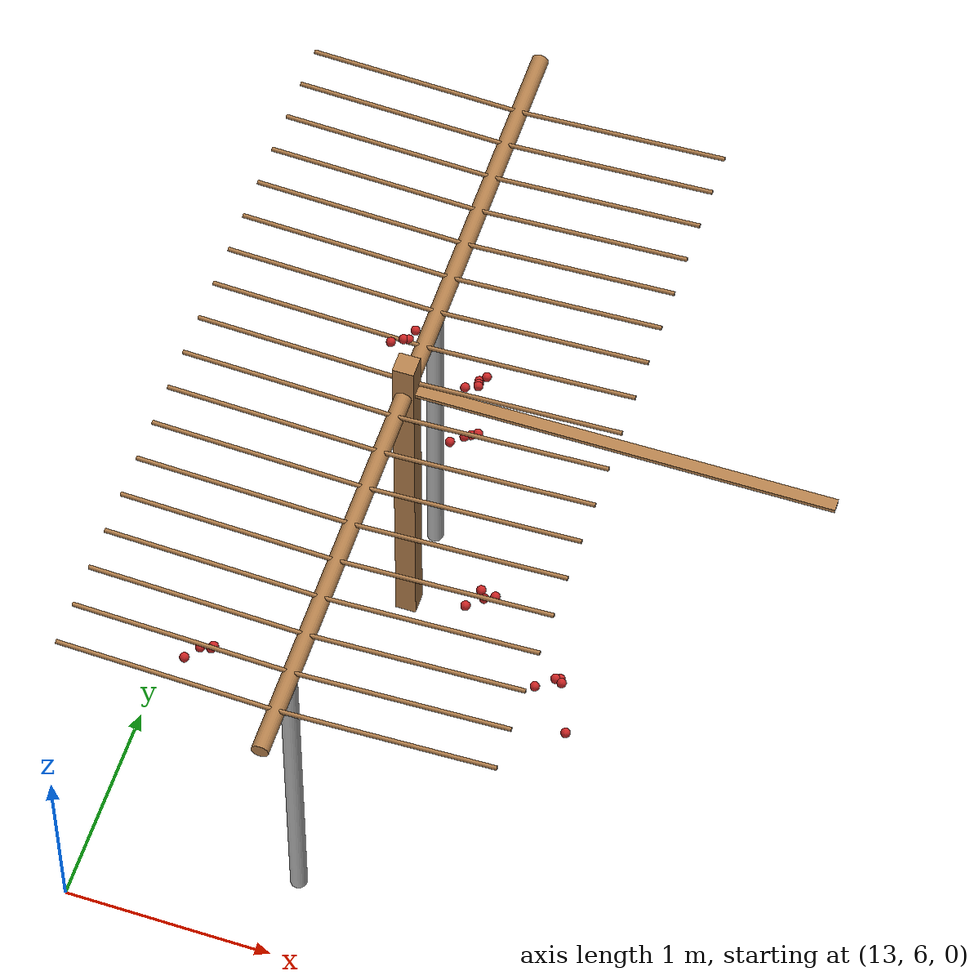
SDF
<sdf version="1.4">
 <model name="pergola">
  <include><name>post_81</name><pose>14.0 8.0 0 0 0 0</pose><uri>model://post</uri></include>
  <link name="beam_81">
   <pose>15.0 8.0 1.81 0 0 0</pose>
   <collision name="collision"><geometry><box><size>2.0 0.06 0.02</size></box></geometry></collision>
   <visual name="visual">
    <geometry><box><size>2.0 0.06 0.02</size></box></geometry>
    <material><script><name>Gazebo/Wood</name></script></material>
   </visual>
   <inertial>
    <mass>5</mass>
    <inertia>
     <ixx>0.0016666666666666668</ixx>
     <ixy>0.0</ixy>
     <ixz>0.0</ixz>
     <iyy>1.6681666666666664</iyy>
     <iyz>0.0</iyz>
     <izz>1.6668333333333332</izz>
    </inertia>
   </inertial>
  </link>
  <include><name>tree_73</name><pose>14.0 6.4 0 0 0 0</pose><uri>model://tree_trunk</uri></include>
  <include><name>tree_74</name><pose>14.0 8.4 0 0 0 0</pose><uri>model://tree_trunk</uri></include>
  <link name="baseBranch_73">
   <pose>14.0 7.0 1.8 1.5707963267948966 0 0</pose>
   <collision name="collision">
    <geometry><cylinder><radius>0.04</radius><length>1.94</length></cylinder></geometry>
   </collision>
   <visual name="visual">
    <geometry><cylinder><radius>0.04</radius><length>1.94</length></cylinder></geometry>
    <material><script><name>Gazebo/WoodFloor</name></script></material>
   </visual>
   <inertial>
    <mass>10</mass>
    <inertia>
     <ixx>3.140333333333333</ixx>
     <ixy>0.0</ixy>
     <ixz>0.0</ixz>
     <iyy>3.140333333333333</iyy>
     <iyz>0.0</iyz>
     <izz>0.008</izz>
    </inertia>
   </inertial>
  </link>
  <link name="baseBranch_74">
   <pose>14.0 9.0 1.8 1.5707963267948966 0 0</pose>
   <collision name="collision">
    <geometry><cylinder><radius>0.04</radius><length>1.94</length></cylinder></geometry>
   </collision>
   <visual name="visual">
    <geometry><cylinder><radius>0.04</radius><length>1.94</length></cylinder></geometry>
    <material><script><name>Gazebo/WoodFloor</name></script></material>
   </visual>
   <inertial>
    <mass>10</mass>
    <inertia>
     <ixx>3.140333333333333</ixx>
     <ixy>0.0</ixy>
     <ixz>0.0</ixz>
     <iyy>3.140333333333333</iyy>
     <iyz>0.0</iyz>
     <izz>0.008</izz>
    </inertia>
   </inertial>
  </link>
  <link name="vine_1263">
   <pose>13.5 6.23 1.85 0 -1.5208379310729538 0</pose>
   <collision name="collision">
    <geometry><cylinder><radius>0.01</radius><length>1.0012492197250393</length></cylinder></geometry>
   </collision>
   <visual name="visual">
    <geometry><cylinder><radius>0.01</radius><length>1.0012492197250393</length></cylinder></geometry>
    <material><script><name>Gazebo/WoodFloor</name></script></material>
   </visual>
   <inertial>
    <mass>5</mass>
    <inertia>
     <ixx>0.41783333333333345</ixx>
     <ixy>0.0</ixy>
     <ixz>0.0</ixz>
     <iyy>0.41783333333333345</iyy>
     <iyz>0.0</iyz>
     <izz>0.00025</izz>
    </inertia>
   </inertial>
  </link>
  <link name="vine_1265">
   <pose>13.5 6.430000000000001 1.85 0 -1.5208379310729538 0</pose>
   <collision name="collision">
    <geometry><cylinder><radius>0.01</radius><length>1.0012492197250393</length></cylinder></geometry>
   </collision>
   <visual name="visual">
    <geometry><cylinder><radius>0.01</radius><length>1.0012492197250393</length></cylinder></geometry>
    <material><script><name>Gazebo/WoodFloor</name></script></material>
   </visual>
   <inertial>
    <mass>5</mass>
    <inertia>
     <ixx>0.41783333333333345</ixx>
     <ixy>0.0</ixy>
     <ixz>0.0</ixz>
     <iyy>0.41783333333333345</iyy>
     <iyz>0.0</iyz>
     <izz>0.00025</izz>
    </inertia>
   </inertial>
  </link>
  <link name="vine_1267">
   <pose>13.5 6.630000000000001 1.85 0 -1.5208379310729538 0</pose>
   <collision name="collision">
    <geometry><cylinder><radius>0.01</radius><length>1.0012492197250393</length></cylinder></geometry>
   </collision>
   <visual name="visual">
    <geometry><cylinder><radius>0.01</radius><length>1.0012492197250393</length></cylinder></geometry>
    <material><script><name>Gazebo/WoodFloor</name></script></material>
   </visual>
   <inertial>
    <mass>5</mass>
    <inertia>
     <ixx>0.41783333333333345</ixx>
     <ixy>0.0</ixy>
     <ixz>0.0</ixz>
     <iyy>0.41783333333333345</iyy>
     <iyz>0.0</iyz>
     <izz>0.00025</izz>
    </inertia>
   </inertial>
  </link>
  <link name="vine_1269">
   <pose>13.5 6.830000000000001 1.85 0 -1.5208379310729538 0</pose>
   <collision name="collision">
    <geometry><cylinder><radius>0.01</radius><length>1.0012492197250393</length></cylinder></geometry>
   </collision>
   <visual name="visual">
    <geometry><cylinder><radius>0.01</radius><length>1.0012492197250393</length></cylinder></geometry>
    <material><script><name>Gazebo/WoodFloor</name></script></material>
   </visual>
   <inertial>
    <mass>5</mass>
    <inertia>
     <ixx>0.41783333333333345</ixx>
     <ixy>0.0</ixy>
     <ixz>0.0</ixz>
     <iyy>0.41783333333333345</iyy>
     <iyz>0.0</iyz>
     <izz>0.00025</izz>
    </inertia>
   </inertial>
  </link>
  <link name="vine_1271">
   <pose>13.5 7.03 1.85 0 -1.5208379310729538 0</pose>
   <collision name="collision">
    <geometry><cylinder><radius>0.01</radius><length>1.0012492197250393</length></cylinder></geometry>
   </collision>
   <visual name="visual">
    <geometry><cylinder><radius>0.01</radius><length>1.0012492197250393</length></cylinder></geometry>
    <material><script><name>Gazebo/WoodFloor</name></script></material>
   </visual>
   <inertial>
    <mass>5</mass>
    <inertia>
     <ixx>0.41783333333333345</ixx>
     <ixy>0.0</ixy>
     <ixz>0.0</ixz>
     <iyy>0.41783333333333345</iyy>
     <iyz>0.0</iyz>
     <izz>0.00025</izz>
    </inertia>
   </inertial>
  </link>
  <link name="vine_1273">
   <pose>13.5 7.23 1.85 0 -1.5208379310729538 0</pose>
   <collision name="collision">
    <geometry><cylinder><radius>0.01</radius><length>1.0012492197250393</length></cylinder></geometry>
   </collision>
   <visual name="visual">
    <geometry><cylinder><radius>0.01</radius><length>1.0012492197250393</length></cylinder></geometry>
    <material><script><name>Gazebo/WoodFloor</name></script></material>
   </visual>
   <inertial>
    <mass>5</mass>
    <inertia>
     <ixx>0.41783333333333345</ixx>
     <ixy>0.0</ixy>
     <ixz>0.0</ixz>
     <iyy>0.41783333333333345</iyy>
     <iyz>0.0</iyz>
     <izz>0.00025</izz>
    </inertia>
   </inertial>
  </link>
  <link name="vine_1275">
   <pose>13.5 7.430000000000001 1.85 0 -1.5208379310729538 0</pose>
   <collision name="collision">
    <geometry><cylinder><radius>0.01</radius><length>1.0012492197250393</length></cylinder></geometry>
   </collision>
   <visual name="visual">
    <geometry><cylinder><radius>0.01</radius><length>1.0012492197250393</length></cylinder></geometry>
    <material><script><name>Gazebo/WoodFloor</name></script></material>
   </visual>
   <inertial>
    <mass>5</mass>
    <inertia>
     <ixx>0.41783333333333345</ixx>
     <ixy>0.0</ixy>
     <ixz>0.0</ixz>
     <iyy>0.41783333333333345</iyy>
     <iyz>0.0</iyz>
     <izz>0.00025</izz>
    </inertia>
   </inertial>
  </link>
  <link name="vine_1277">
   <pose>13.5 7.630000000000001 1.85 0 -1.5208379310729538 0</pose>
   <collision name="collision">
    <geometry><cylinder><radius>0.01</radius><length>1.0012492197250393</length></cylinder></geometry>
   </collision>
   <visual name="visual">
    <geometry><cylinder><radius>0.01</radius><length>1.0012492197250393</length></cylinder></geometry>
    <material><script><name>Gazebo/WoodFloor</name></script></material>
   </visual>
   <inertial>
    <mass>5</mass>
    <inertia>
     <ixx>0.41783333333333345</ixx>
     <ixy>0.0</ixy>
     <ixz>0.0</ixz>
     <iyy>0.41783333333333345</iyy>
     <iyz>0.0</iyz>
     <izz>0.00025</izz>
    </inertia>
   </inertial>
  </link>
  <link name="vine_1279">
   <pose>13.5 7.830000000000001 1.85 0 -1.5208379310729538 0</pose>
   <collision name="collision">
    <geometry><cylinder><radius>0.01</radius><length>1.0012492197250393</length></cylinder></geometry>
   </collision>
   <visual name="visual">
    <geometry><cylinder><radius>0.01</radius><length>1.0012492197250393</length></cylinder></geometry>
    <material><script><name>Gazebo/WoodFloor</name></script></material>
   </visual>
   <inertial>
    <mass>5</mass>
    <inertia>
     <ixx>0.41783333333333345</ixx>
     <ixy>0.0</ixy>
     <ixz>0.0</ixz>
     <iyy>0.41783333333333345</iyy>
     <iyz>0.0</iyz>
     <izz>0.00025</izz>
    </inertia>
   </inertial>
  </link>
  <link name="vine_1281">
   <pose>13.5 8.03 1.85 0 -1.5208379310729538 0</pose>
   <collision name="collision">
    <geometry><cylinder><radius>0.01</radius><length>1.0012492197250393</length></cylinder></geometry>
   </collision>
   <visual name="visual">
    <geometry><cylinder><radius>0.01</radius><length>1.0012492197250393</length></cylinder></geometry>
    <material><script><name>Gazebo/WoodFloor</name></script></material>
   </visual>
   <inertial>
    <mass>5</mass>
    <inertia>
     <ixx>0.41783333333333345</ixx>
     <ixy>0.0</ixy>
     <ixz>0.0</ixz>
     <iyy>0.41783333333333345</iyy>
     <iyz>0.0</iyz>
     <izz>0.00025</izz>
    </inertia>
   </inertial>
  </link>
  <link name="vine_1283">
   <pose>13.5 8.23 1.85 0 -1.5208379310729538 0</pose>
   <collision name="collision">
    <geometry><cylinder><radius>0.01</radius><length>1.0012492197250393</length></cylinder></geometry>
   </collision>
   <visual name="visual">
    <geometry><cylinder><radius>0.01</radius><length>1.0012492197250393</length></cylinder></geometry>
    <material><script><name>Gazebo/WoodFloor</name></script></material>
   </visual>
   <inertial>
    <mass>5</mass>
    <inertia>
     <ixx>0.41783333333333345</ixx>
     <ixy>0.0</ixy>
     <ixz>0.0</ixz>
     <iyy>0.41783333333333345</iyy>
     <iyz>0.0</iyz>
     <izz>0.00025</izz>
    </inertia>
   </inertial>
  </link>
  <link name="vine_1285">
   <pose>13.5 8.43 1.85 0 -1.5208379310729538 0</pose>
   <collision name="collision">
    <geometry><cylinder><radius>0.01</radius><length>1.0012492197250393</length></cylinder></geometry>
   </collision>
   <visual name="visual">
    <geometry><cylinder><radius>0.01</radius><length>1.0012492197250393</length></cylinder></geometry>
    <material><script><name>Gazebo/WoodFloor</name></script></material>
   </visual>
   <inertial>
    <mass>5</mass>
    <inertia>
     <ixx>0.41783333333333345</ixx>
     <ixy>0.0</ixy>
     <ixz>0.0</ixz>
     <iyy>0.41783333333333345</iyy>
     <iyz>0.0</iyz>
     <izz>0.00025</izz>
    </inertia>
   </inertial>
  </link>
  <link name="vine_1287">
   <pose>13.5 8.629999999999999 1.85 0 -1.5208379310729538 0</pose>
   <collision name="collision">
    <geometry><cylinder><radius>0.01</radius><length>1.0012492197250393</length></cylinder></geometry>
   </collision>
   <visual name="visual">
    <geometry><cylinder><radius>0.01</radius><length>1.0012492197250393</length></cylinder></geometry>
    <material><script><name>Gazebo/WoodFloor</name></script></material>
   </visual>
   <inertial>
    <mass>5</mass>
    <inertia>
     <ixx>0.41783333333333345</ixx>
     <ixy>0.0</ixy>
     <ixz>0.0</ixz>
     <iyy>0.41783333333333345</iyy>
     <iyz>0.0</iyz>
     <izz>0.00025</izz>
    </inertia>
   </inertial>
  </link>
  <link name="vine_1289">
   <pose>13.5 8.83 1.85 0 -1.5208379310729538 0</pose>
   <collision name="collision">
    <geometry><cylinder><radius>0.01</radius><length>1.0012492197250393</length></cylinder></geometry>
   </collision>
   <visual name="visual">
    <geometry><cylinder><radius>0.01</radius><length>1.0012492197250393</length></cylinder></geometry>
    <material><script><name>Gazebo/WoodFloor</name></script></material>
   </visual>
   <inertial>
    <mass>5</mass>
    <inertia>
     <ixx>0.41783333333333345</ixx>
     <ixy>0.0</ixy>
     <ixz>0.0</ixz>
     <iyy>0.41783333333333345</iyy>
     <iyz>0.0</iyz>
     <izz>0.00025</izz>
    </inertia>
   </inertial>
  </link>
  <link name="vine_1291">
   <pose>13.5 9.03 1.85 0 -1.5208379310729538 0</pose>
   <collision name="collision">
    <geometry><cylinder><radius>0.01</radius><length>1.0012492197250393</length></cylinder></geometry>
   </collision>
   <visual name="visual">
    <geometry><cylinder><radius>0.01</radius><length>1.0012492197250393</length></cylinder></geometry>
    <material><script><name>Gazebo/WoodFloor</name></script></material>
   </visual>
   <inertial>
    <mass>5</mass>
    <inertia>
     <ixx>0.41783333333333345</ixx>
     <ixy>0.0</ixy>
     <ixz>0.0</ixz>
     <iyy>0.41783333333333345</iyy>
     <iyz>0.0</iyz>
     <izz>0.00025</izz>
    </inertia>
   </inertial>
  </link>
  <link name="vine_1293">
   <pose>13.5 9.23 1.85 0 -1.5208379310729538 0</pose>
   <collision name="collision">
    <geometry><cylinder><radius>0.01</radius><length>1.0012492197250393</length></cylinder></geometry>
   </collision>
   <visual name="visual">
    <geometry><cylinder><radius>0.01</radius><length>1.0012492197250393</length></cylinder></geometry>
    <material><script><name>Gazebo/WoodFloor</name></script></material>
   </visual>
   <inertial>
    <mass>5</mass>
    <inertia>
     <ixx>0.41783333333333345</ixx>
     <ixy>0.0</ixy>
     <ixz>0.0</ixz>
     <iyy>0.41783333333333345</iyy>
     <iyz>0.0</iyz>
     <izz>0.00025</izz>
    </inertia>
   </inertial>
  </link>
  <link name="vine_1295">
   <pose>13.5 9.43 1.85 0 -1.5208379310729538 0</pose>
   <collision name="collision">
    <geometry><cylinder><radius>0.01</radius><length>1.0012492197250393</length></cylinder></geometry>
   </collision>
   <visual name="visual">
    <geometry><cylinder><radius>0.01</radius><length>1.0012492197250393</length></cylinder></geometry>
    <material><script><name>Gazebo/WoodFloor</name></script></material>
   </visual>
   <inertial>
    <mass>5</mass>
    <inertia>
     <ixx>0.41783333333333345</ixx>
     <ixy>0.0</ixy>
     <ixz>0.0</ixz>
     <iyy>0.41783333333333345</iyy>
     <iyz>0.0</iyz>
     <izz>0.00025</izz>
    </inertia>
   </inertial>
  </link>
  <link name="vine_1297">
   <pose>13.5 9.63 1.85 0 -1.5208379310729538 0</pose>
   <collision name="collision">
    <geometry><cylinder><radius>0.01</radius><length>1.0012492197250393</length></cylinder></geometry>
   </collision>
   <visual name="visual">
    <geometry><cylinder><radius>0.01</radius><length>1.0012492197250393</length></cylinder></geometry>
    <material><script><name>Gazebo/WoodFloor</name></script></material>
   </visual>
   <inertial>
    <mass>5</mass>
    <inertia>
     <ixx>0.41783333333333345</ixx>
     <ixy>0.0</ixy>
     <ixz>0.0</ixz>
     <iyy>0.41783333333333345</iyy>
     <iyz>0.0</iyz>
     <izz>0.00025</izz>
    </inertia>
   </inertial>
  </link>
  <link name="vine_1462">
   <pose>14.5 6.23 1.85 0 1.5208379310729538 0</pose>
   <collision name="collision">
    <geometry><cylinder><radius>0.01</radius><length>1.0012492197250393</length></cylinder></geometry>
   </collision>
   <visual name="visual">
    <geometry><cylinder><radius>0.01</radius><length>1.0012492197250393</length></cylinder></geometry>
    <material><script><name>Gazebo/WoodFloor</name></script></material>
   </visual>
   <inertial>
    <mass>5</mass>
    <inertia>
     <ixx>0.41783333333333345</ixx>
     <ixy>0.0</ixy>
     <ixz>0.0</ixz>
     <iyy>0.41783333333333345</iyy>
     <iyz>0.0</iyz>
     <izz>0.00025</izz>
    </inertia>
   </inertial>
  </link>
  <link name="vine_1464">
   <pose>14.5 6.430000000000001 1.85 0 1.5208379310729538 0</pose>
   <collision name="collision">
    <geometry><cylinder><radius>0.01</radius><length>1.0012492197250393</length></cylinder></geometry>
   </collision>
   <visual name="visual">
    <geometry><cylinder><radius>0.01</radius><length>1.0012492197250393</length></cylinder></geometry>
    <material><script><name>Gazebo/WoodFloor</name></script></material>
   </visual>
   <inertial>
    <mass>5</mass>
    <inertia>
     <ixx>0.41783333333333345</ixx>
     <ixy>0.0</ixy>
     <ixz>0.0</ixz>
     <iyy>0.41783333333333345</iyy>
     <iyz>0.0</iyz>
     <izz>0.00025</izz>
    </inertia>
   </inertial>
  </link>
  <link name="vine_1466">
   <pose>14.5 6.630000000000001 1.85 0 1.5208379310729538 0</pose>
   <collision name="collision">
    <geometry><cylinder><radius>0.01</radius><length>1.0012492197250393</length></cylinder></geometry>
   </collision>
   <visual name="visual">
    <geometry><cylinder><radius>0.01</radius><length>1.0012492197250393</length></cylinder></geometry>
    <material><script><name>Gazebo/WoodFloor</name></script></material>
   </visual>
   <inertial>
    <mass>5</mass>
    <inertia>
     <ixx>0.41783333333333345</ixx>
     <ixy>0.0</ixy>
     <ixz>0.0</ixz>
     <iyy>0.41783333333333345</iyy>
     <iyz>0.0</iyz>
     <izz>0.00025</izz>
    </inertia>
   </inertial>
  </link>
  <link name="vine_1468">
   <pose>14.5 6.830000000000001 1.85 0 1.5208379310729538 0</pose>
   <collision name="collision">
    <geometry><cylinder><radius>0.01</radius><length>1.0012492197250393</length></cylinder></geometry>
   </collision>
   <visual name="visual">
    <geometry><cylinder><radius>0.01</radius><length>1.0012492197250393</length></cylinder></geometry>
    <material><script><name>Gazebo/WoodFloor</name></script></material>
   </visual>
   <inertial>
    <mass>5</mass>
    <inertia>
     <ixx>0.41783333333333345</ixx>
     <ixy>0.0</ixy>
     <ixz>0.0</ixz>
     <iyy>0.41783333333333345</iyy>
     <iyz>0.0</iyz>
     <izz>0.00025</izz>
    </inertia>
   </inertial>
  </link>
  <link name="vine_1470">
   <pose>14.5 7.03 1.85 0 1.5208379310729538 0</pose>
   <collision name="collision">
    <geometry><cylinder><radius>0.01</radius><length>1.0012492197250393</length></cylinder></geometry>
   </collision>
   <visual name="visual">
    <geometry><cylinder><radius>0.01</radius><length>1.0012492197250393</length></cylinder></geometry>
    <material><script><name>Gazebo/WoodFloor</name></script></material>
   </visual>
   <inertial>
    <mass>5</mass>
    <inertia>
     <ixx>0.41783333333333345</ixx>
     <ixy>0.0</ixy>
     <ixz>0.0</ixz>
     <iyy>0.41783333333333345</iyy>
     <iyz>0.0</iyz>
     <izz>0.00025</izz>
    </inertia>
   </inertial>
  </link>
  <link name="vine_1472">
   <pose>14.5 7.23 1.85 0 1.5208379310729538 0</pose>
   <collision name="collision">
    <geometry><cylinder><radius>0.01</radius><length>1.0012492197250393</length></cylinder></geometry>
   </collision>
   <visual name="visual">
    <geometry><cylinder><radius>0.01</radius><length>1.0012492197250393</length></cylinder></geometry>
    <material><script><name>Gazebo/WoodFloor</name></script></material>
   </visual>
   <inertial>
    <mass>5</mass>
    <inertia>
     <ixx>0.41783333333333345</ixx>
     <ixy>0.0</ixy>
     <ixz>0.0</ixz>
     <iyy>0.41783333333333345</iyy>
     <iyz>0.0</iyz>
     <izz>0.00025</izz>
    </inertia>
   </inertial>
  </link>
  <link name="vine_1474">
   <pose>14.5 7.430000000000001 1.85 0 1.5208379310729538 0</pose>
   <collision name="collision">
    <geometry><cylinder><radius>0.01</radius><length>1.0012492197250393</length></cylinder></geometry>
   </collision>
   <visual name="visual">
    <geometry><cylinder><radius>0.01</radius><length>1.0012492197250393</length></cylinder></geometry>
    <material><script><name>Gazebo/WoodFloor</name></script></material>
   </visual>
   <inertial>
    <mass>5</mass>
    <inertia>
     <ixx>0.41783333333333345</ixx>
     <ixy>0.0</ixy>
     <ixz>0.0</ixz>
     <iyy>0.41783333333333345</iyy>
     <iyz>0.0</iyz>
     <izz>0.00025</izz>
    </inertia>
   </inertial>
  </link>
  <link name="vine_1476">
   <pose>14.5 7.630000000000001 1.85 0 1.5208379310729538 0</pose>
   <collision name="collision">
    <geometry><cylinder><radius>0.01</radius><length>1.0012492197250393</length></cylinder></geometry>
   </collision>
   <visual name="visual">
    <geometry><cylinder><radius>0.01</radius><length>1.0012492197250393</length></cylinder></geometry>
    <material><script><name>Gazebo/WoodFloor</name></script></material>
   </visual>
   <inertial>
    <mass>5</mass>
    <inertia>
     <ixx>0.41783333333333345</ixx>
     <ixy>0.0</ixy>
     <ixz>0.0</ixz>
     <iyy>0.41783333333333345</iyy>
     <iyz>0.0</iyz>
     <izz>0.00025</izz>
    </inertia>
   </inertial>
  </link>
  <link name="vine_1478">
   <pose>14.5 7.830000000000001 1.85 0 1.5208379310729538 0</pose>
   <collision name="collision">
    <geometry><cylinder><radius>0.01</radius><length>1.0012492197250393</length></cylinder></geometry>
   </collision>
   <visual name="visual">
    <geometry><cylinder><radius>0.01</radius><length>1.0012492197250393</length></cylinder></geometry>
    <material><script><name>Gazebo/WoodFloor</name></script></material>
   </visual>
   <inertial>
    <mass>5</mass>
    <inertia>
     <ixx>0.41783333333333345</ixx>
     <ixy>0.0</ixy>
     <ixz>0.0</ixz>
     <iyy>0.41783333333333345</iyy>
     <iyz>0.0</iyz>
     <izz>0.00025</izz>
    </inertia>
   </inertial>
  </link>
  <link name="vine_1480">
   <pose>14.5 8.03 1.85 0 1.5208379310729538 0</pose>
   <collision name="collision">
    <geometry><cylinder><radius>0.01</radius><length>1.0012492197250393</length></cylinder></geometry>
   </collision>
   <visual name="visual">
    <geometry><cylinder><radius>0.01</radius><length>1.0012492197250393</length></cylinder></geometry>
    <material><script><name>Gazebo/WoodFloor</name></script></material>
   </visual>
   <inertial>
    <mass>5</mass>
    <inertia>
     <ixx>0.41783333333333345</ixx>
     <ixy>0.0</ixy>
     <ixz>0.0</ixz>
     <iyy>0.41783333333333345</iyy>
     <iyz>0.0</iyz>
     <izz>0.00025</izz>
    </inertia>
   </inertial>
  </link>
  <link name="vine_1482">
   <pose>14.5 8.23 1.85 0 1.5208379310729538 0</pose>
   <collision name="collision">
    <geometry><cylinder><radius>0.01</radius><length>1.0012492197250393</length></cylinder></geometry>
   </collision>
   <visual name="visual">
    <geometry><cylinder><radius>0.01</radius><length>1.0012492197250393</length></cylinder></geometry>
    <material><script><name>Gazebo/WoodFloor</name></script></material>
   </visual>
   <inertial>
    <mass>5</mass>
    <inertia>
     <ixx>0.41783333333333345</ixx>
     <ixy>0.0</ixy>
     <ixz>0.0</ixz>
     <iyy>0.41783333333333345</iyy>
     <iyz>0.0</iyz>
     <izz>0.00025</izz>
    </inertia>
   </inertial>
  </link>
  <link name="vine_1484">
   <pose>14.5 8.43 1.85 0 1.5208379310729538 0</pose>
   <collision name="collision">
    <geometry><cylinder><radius>0.01</radius><length>1.0012492197250393</length></cylinder></geometry>
   </collision>
   <visual name="visual">
    <geometry><cylinder><radius>0.01</radius><length>1.0012492197250393</length></cylinder></geometry>
    <material><script><name>Gazebo/WoodFloor</name></script></material>
   </visual>
   <inertial>
    <mass>5</mass>
    <inertia>
     <ixx>0.41783333333333345</ixx>
     <ixy>0.0</ixy>
     <ixz>0.0</ixz>
     <iyy>0.41783333333333345</iyy>
     <iyz>0.0</iyz>
     <izz>0.00025</izz>
    </inertia>
   </inertial>
  </link>
  <link name="vine_1486">
   <pose>14.5 8.629999999999999 1.85 0 1.5208379310729538 0</pose>
   <collision name="collision">
    <geometry><cylinder><radius>0.01</radius><length>1.0012492197250393</length></cylinder></geometry>
   </collision>
   <visual name="visual">
    <geometry><cylinder><radius>0.01</radius><length>1.0012492197250393</length></cylinder></geometry>
    <material><script><name>Gazebo/WoodFloor</name></script></material>
   </visual>
   <inertial>
    <mass>5</mass>
    <inertia>
     <ixx>0.41783333333333345</ixx>
     <ixy>0.0</ixy>
     <ixz>0.0</ixz>
     <iyy>0.41783333333333345</iyy>
     <iyz>0.0</iyz>
     <izz>0.00025</izz>
    </inertia>
   </inertial>
  </link>
  <link name="vine_1488">
   <pose>14.5 8.83 1.85 0 1.5208379310729538 0</pose>
   <collision name="collision">
    <geometry><cylinder><radius>0.01</radius><length>1.0012492197250393</length></cylinder></geometry>
   </collision>
   <visual name="visual">
    <geometry><cylinder><radius>0.01</radius><length>1.0012492197250393</length></cylinder></geometry>
    <material><script><name>Gazebo/WoodFloor</name></script></material>
   </visual>
   <inertial>
    <mass>5</mass>
    <inertia>
     <ixx>0.41783333333333345</ixx>
     <ixy>0.0</ixy>
     <ixz>0.0</ixz>
     <iyy>0.41783333333333345</iyy>
     <iyz>0.0</iyz>
     <izz>0.00025</izz>
    </inertia>
   </inertial>
  </link>
  <link name="vine_1490">
   <pose>14.5 9.03 1.85 0 1.5208379310729538 0</pose>
   <collision name="collision">
    <geometry><cylinder><radius>0.01</radius><length>1.0012492197250393</length></cylinder></geometry>
   </collision>
   <visual name="visual">
    <geometry><cylinder><radius>0.01</radius><length>1.0012492197250393</length></cylinder></geometry>
    <material><script><name>Gazebo/WoodFloor</name></script></material>
   </visual>
   <inertial>
    <mass>5</mass>
    <inertia>
     <ixx>0.41783333333333345</ixx>
     <ixy>0.0</ixy>
     <ixz>0.0</ixz>
     <iyy>0.41783333333333345</iyy>
     <iyz>0.0</iyz>
     <izz>0.00025</izz>
    </inertia>
   </inertial>
  </link>
  <link name="vine_1492">
   <pose>14.5 9.23 1.85 0 1.5208379310729538 0</pose>
   <collision name="collision">
    <geometry><cylinder><radius>0.01</radius><length>1.0012492197250393</length></cylinder></geometry>
   </collision>
   <visual name="visual">
    <geometry><cylinder><radius>0.01</radius><length>1.0012492197250393</length></cylinder></geometry>
    <material><script><name>Gazebo/WoodFloor</name></script></material>
   </visual>
   <inertial>
    <mass>5</mass>
    <inertia>
     <ixx>0.41783333333333345</ixx>
     <ixy>0.0</ixy>
     <ixz>0.0</ixz>
     <iyy>0.41783333333333345</iyy>
     <iyz>0.0</iyz>
     <izz>0.00025</izz>
    </inertia>
   </inertial>
  </link>
  <link name="vine_1494">
   <pose>14.5 9.43 1.85 0 1.5208379310729538 0</pose>
   <collision name="collision">
    <geometry><cylinder><radius>0.01</radius><length>1.0012492197250393</length></cylinder></geometry>
   </collision>
   <visual name="visual">
    <geometry><cylinder><radius>0.01</radius><length>1.0012492197250393</length></cylinder></geometry>
    <material><script><name>Gazebo/WoodFloor</name></script></material>
   </visual>
   <inertial>
    <mass>5</mass>
    <inertia>
     <ixx>0.41783333333333345</ixx>
     <ixy>0.0</ixy>
     <ixz>0.0</ixz>
     <iyy>0.41783333333333345</iyy>
     <iyz>0.0</iyz>
     <izz>0.00025</izz>
    </inertia>
   </inertial>
  </link>
  <link name="vine_1496">
   <pose>14.5 9.63 1.85 0 1.5208379310729538 0</pose>
   <collision name="collision">
    <geometry><cylinder><radius>0.01</radius><length>1.0012492197250393</length></cylinder></geometry>
   </collision>
   <visual name="visual">
    <geometry><cylinder><radius>0.01</radius><length>1.0012492197250393</length></cylinder></geometry>
    <material><script><name>Gazebo/WoodFloor</name></script></material>
   </visual>
   <inertial>
    <mass>5</mass>
    <inertia>
     <ixx>0.41783333333333345</ixx>
     <ixy>0.0</ixy>
     <ixz>0.0</ixz>
     <iyy>0.41783333333333345</iyy>
     <iyz>0.0</iyz>
     <izz>0.00025</izz>
    </inertia>
   </inertial>
  </link>
  <link name="fruit_9">
   <pose>15.198090234362825 6.579521787456615 1.7098305009940018 0 0 0</pose>
   <collision name="fruit_collision_9"><geometry><sphere><radius>0.022</radius></sphere></geometry></collision>
   <visual name="visual">
    <geometry><sphere><radius>0.022</radius></sphere></geometry>
    <material><script><name>Gazebo/Red</name></script></material>
   </visual>
   <inertial>
    <mass>0.05</mass>
    <inertia>
     <ixx>9.679999999999999e-06</ixx>
     <ixy>0.0</ixy>
     <ixz>0.0</ixz>
     <iyy>9.679999999999999e-06</iyy>
     <iyz>0.0</iyz>
     <izz>9.679999999999999e-06</izz>
    </inertia>
   </inertial>
   <sensor name="fruit_contact_9" type="contact">
    <contact><collision>fruit_collision_9</collision></contact>
   </sensor>
  </link>
  <link name="fruit_15">
   <pose>13.859415481615343 8.197456086882033 1.8406252053642007 0 0 0</pose>
   <collision name="fruit_collision_15"><geometry><sphere><radius>0.022</radius></sphere></geometry></collision>
   <visual name="visual">
    <geometry><sphere><radius>0.022</radius></sphere></geometry>
    <material><script><name>Gazebo/Red</name></script></material>
   </visual>
   <inertial>
    <mass>0.05</mass>
    <inertia>
     <ixx>9.679999999999999e-06</ixx>
     <ixy>0.0</ixy>
     <ixz>0.0</ixz>
     <iyy>9.679999999999999e-06</iyy>
     <iyz>0.0</iyz>
     <izz>9.679999999999999e-06</izz>
    </inertia>
   </inertial>
   <sensor name="fruit_contact_15" type="contact">
    <contact><collision>fruit_collision_15</collision></contact>
   </sensor>
  </link>
  <link name="fruit_63">
   <pose>14.190879648934338 8.260208794848166 1.5425754277581096 0 0 0</pose>
   <collision name="fruit_collision_63"><geometry><sphere><radius>0.022</radius></sphere></geometry></collision>
   <visual name="visual">
    <geometry><sphere><radius>0.022</radius></sphere></geometry>
    <material><script><name>Gazebo/Red</name></script></material>
   </visual>
   <inertial>
    <mass>0.05</mass>
    <inertia>
     <ixx>9.679999999999999e-06</ixx>
     <ixy>0.0</ixy>
     <ixz>0.0</ixz>
     <iyy>9.679999999999999e-06</iyy>
     <iyz>0.0</iyz>
     <izz>9.679999999999999e-06</izz>
    </inertia>
   </inertial>
   <sensor name="fruit_contact_63" type="contact">
    <contact><collision>fruit_collision_63</collision></contact>
   </sensor>
  </link>
  <link name="fruit_143">
   <pose>13.536994022180105 6.362524678797332 1.814429103742775 0 0 0</pose>
   <collision name="fruit_collision_143"><geometry><sphere><radius>0.022</radius></sphere></geometry></collision>
   <visual name="visual">
    <geometry><sphere><radius>0.022</radius></sphere></geometry>
    <material><script><name>Gazebo/Red</name></script></material>
   </visual>
   <inertial>
    <mass>0.05</mass>
    <inertia>
     <ixx>9.679999999999999e-06</ixx>
     <ixy>0.0</ixy>
     <ixz>0.0</ixz>
     <iyy>9.679999999999999e-06</iyy>
     <iyz>0.0</iyz>
     <izz>9.679999999999999e-06</izz>
    </inertia>
   </inertial>
   <sensor name="fruit_contact_143" type="contact">
    <contact><collision>fruit_collision_143</collision></contact>
   </sensor>
  </link>
  <link name="fruit_180">
   <pose>14.60861333573476 6.992433423947176 1.8159874106735037 0 0 0</pose>
   <collision name="fruit_collision_180"><geometry><sphere><radius>0.022</radius></sphere></geometry></collision>
   <visual name="visual">
    <geometry><sphere><radius>0.022</radius></sphere></geometry>
    <material><script><name>Gazebo/Red</name></script></material>
   </visual>
   <inertial>
    <mass>0.05</mass>
    <inertia>
     <ixx>9.679999999999999e-06</ixx>
     <ixy>0.0</ixy>
     <ixz>0.0</ixz>
     <iyy>9.679999999999999e-06</iyy>
     <iyz>0.0</iyz>
     <izz>9.679999999999999e-06</izz>
    </inertia>
   </inertial>
   <sensor name="fruit_contact_180" type="contact">
    <contact><collision>fruit_collision_180</collision></contact>
   </sensor>
  </link>
  <link name="fruit_242">
   <pose>14.228236235137361 7.929854339470104 1.5845723472395152 0 0 0</pose>
   <collision name="fruit_collision_242"><geometry><sphere><radius>0.022</radius></sphere></geometry></collision>
   <visual name="visual">
    <geometry><sphere><radius>0.022</radius></sphere></geometry>
    <material><script><name>Gazebo/Red</name></script></material>
   </visual>
   <inertial>
    <mass>0.05</mass>
    <inertia>
     <ixx>9.679999999999999e-06</ixx>
     <ixy>0.0</ixy>
     <ixz>0.0</ixz>
     <iyy>9.679999999999999e-06</iyy>
     <iyz>0.0</iyz>
     <izz>9.679999999999999e-06</izz>
    </inertia>
   </inertial>
   <sensor name="fruit_contact_242" type="contact">
    <contact><collision>fruit_collision_242</collision></contact>
   </sensor>
  </link>
  <link name="fruit_307">
   <pose>14.96611190635548 6.8814744992217305 1.4961170592888342 0 0 0</pose>
   <collision name="fruit_collision_307"><geometry><sphere><radius>0.022</radius></sphere></geometry></collision>
   <visual name="visual">
    <geometry><sphere><radius>0.022</radius></sphere></geometry>
    <material><script><name>Gazebo/Red</name></script></material>
   </visual>
   <inertial>
    <mass>0.05</mass>
    <inertia>
     <ixx>9.679999999999999e-06</ixx>
     <ixy>0.0</ixy>
     <ixz>0.0</ixz>
     <iyy>9.679999999999999e-06</iyy>
     <iyz>0.0</iyz>
     <izz>9.679999999999999e-06</izz>
    </inertia>
   </inertial>
   <sensor name="fruit_contact_307" type="contact">
    <contact><collision>fruit_collision_307</collision></contact>
   </sensor>
  </link>
  <link name="fruit_389">
   <pose>13.580851210715656 6.441708722038828 1.7957865120888201 0 0 0</pose>
   <collision name="fruit_collision_389"><geometry><sphere><radius>0.022</radius></sphere></geometry></collision>
   <visual name="visual">
    <geometry><sphere><radius>0.022</radius></sphere></geometry>
    <material><script><name>Gazebo/Red</name></script></material>
   </visual>
   <inertial>
    <mass>0.05</mass>
    <inertia>
     <ixx>9.679999999999999e-06</ixx>
     <ixy>0.0</ixy>
     <ixz>0.0</ixz>
     <iyy>9.679999999999999e-06</iyy>
     <iyz>0.0</iyz>
     <izz>9.679999999999999e-06</izz>
    </inertia>
   </inertial>
   <sensor name="fruit_contact_389" type="contact">
    <contact><collision>fruit_collision_389</collision></contact>
   </sensor>
  </link>
  <link name="fruit_431">
   <pose>14.333863583102323 8.015902726838442 1.5794132152136222 0 0 0</pose>
   <collision name="fruit_collision_431"><geometry><sphere><radius>0.022</radius></sphere></geometry></collision>
   <visual name="visual">
    <geometry><sphere><radius>0.022</radius></sphere></geometry>
    <material><script><name>Gazebo/Red</name></script></material>
   </visual>
   <inertial>
    <mass>0.05</mass>
    <inertia>
     <ixx>9.679999999999999e-06</ixx>
     <ixy>0.0</ixy>
     <ixz>0.0</ixz>
     <iyy>9.679999999999999e-06</iyy>
     <iyz>0.0</iyz>
     <izz>9.679999999999999e-06</izz>
    </inertia>
   </inertial>
   <sensor name="fruit_contact_431" type="contact">
    <contact><collision>fruit_collision_431</collision></contact>
   </sensor>
  </link>
  <link name="fruit_474">
   <pose>14.26771275216195 8.346879422666222 1.5410465992671643 0 0 0</pose>
   <collision name="fruit_collision_474"><geometry><sphere><radius>0.022</radius></sphere></geometry></collision>
   <visual name="visual">
    <geometry><sphere><radius>0.022</radius></sphere></geometry>
    <material><script><name>Gazebo/Red</name></script></material>
   </visual>
   <inertial>
    <mass>0.05</mass>
    <inertia>
     <ixx>9.679999999999999e-06</ixx>
     <ixy>0.0</ixy>
     <ixz>0.0</ixz>
     <iyy>9.679999999999999e-06</iyy>
     <iyz>0.0</iyz>
     <izz>9.679999999999999e-06</izz>
    </inertia>
   </inertial>
   <sensor name="fruit_contact_474" type="contact">
    <contact><collision>fruit_collision_474</collision></contact>
   </sensor>
  </link>
  <link name="fruit_511">
   <pose>14.715930435153696 7.084697471932866 1.8027566155289527 0 0 0</pose>
   <collision name="fruit_collision_511"><geometry><sphere><radius>0.022</radius></sphere></geometry></collision>
   <visual name="visual">
    <geometry><sphere><radius>0.022</radius></sphere></geometry>
    <material><script><name>Gazebo/Red</name></script></material>
   </visual>
   <inertial>
    <mass>0.05</mass>
    <inertia>
     <ixx>9.679999999999999e-06</ixx>
     <ixy>0.0</ixy>
     <ixz>0.0</ixz>
     <iyy>9.679999999999999e-06</iyy>
     <iyz>0.0</iyz>
     <izz>9.679999999999999e-06</izz>
    </inertia>
   </inertial>
   <sensor name="fruit_contact_511" type="contact">
    <contact><collision>fruit_collision_511</collision></contact>
   </sensor>
  </link>
  <link name="fruit_547">
   <pose>13.908208700040124 8.23246640290916 1.8363754452343133 0 0 0</pose>
   <collision name="fruit_collision_547"><geometry><sphere><radius>0.022</radius></sphere></geometry></collision>
   <visual name="visual">
    <geometry><sphere><radius>0.022</radius></sphere></geometry>
    <material><script><name>Gazebo/Red</name></script></material>
   </visual>
   <inertial>
    <mass>0.05</mass>
    <inertia>
     <ixx>9.679999999999999e-06</ixx>
     <ixy>0.0</ixy>
     <ixz>0.0</ixz>
     <iyy>9.679999999999999e-06</iyy>
     <iyz>0.0</iyz>
     <izz>9.679999999999999e-06</izz>
    </inertia>
   </inertial>
   <sensor name="fruit_contact_547" type="contact">
    <contact><collision>fruit_collision_547</collision></contact>
   </sensor>
  </link>
  <link name="fruit_560">
   <pose>14.279861197650561 7.979987549171401 1.5803193501804804 0 0 0</pose>
   <collision name="fruit_collision_560"><geometry><sphere><radius>0.022</radius></sphere></geometry></collision>
   <visual name="visual">
    <geometry><sphere><radius>0.022</radius></sphere></geometry>
    <material><script><name>Gazebo/Red</name></script></material>
   </visual>
   <inertial>
    <mass>0.05</mass>
    <inertia>
     <ixx>9.679999999999999e-06</ixx>
     <ixy>0.0</ixy>
     <ixz>0.0</ixz>
     <iyy>9.679999999999999e-06</iyy>
     <iyz>0.0</iyz>
     <izz>9.679999999999999e-06</izz>
    </inertia>
   </inertial>
   <sensor name="fruit_contact_560" type="contact">
    <contact><collision>fruit_collision_560</collision></contact>
   </sensor>
  </link>
  <link name="fruit_575">
   <pose>14.241790505026511 8.305118895174498 1.5315111942323052 0 0 0</pose>
   <collision name="fruit_collision_575"><geometry><sphere><radius>0.022</radius></sphere></geometry></collision>
   <visual name="visual">
    <geometry><sphere><radius>0.022</radius></sphere></geometry>
    <material><script><name>Gazebo/Red</name></script></material>
   </visual>
   <inertial>
    <mass>0.05</mass>
    <inertia>
     <ixx>9.679999999999999e-06</ixx>
     <ixy>0.0</ixy>
     <ixz>0.0</ixz>
     <iyy>9.679999999999999e-06</iyy>
     <iyz>0.0</iyz>
     <izz>9.679999999999999e-06</izz>
    </inertia>
   </inertial>
   <sensor name="fruit_contact_575" type="contact">
    <contact><collision>fruit_collision_575</collision></contact>
   </sensor>
  </link>
  <link name="fruit_599">
   <pose>13.943373291752469 8.296511783602455 1.8333404334018764 0 0 0</pose>
   <collision name="fruit_collision_599"><geometry><sphere><radius>0.022</radius></sphere></geometry></collision>
   <visual name="visual">
    <geometry><sphere><radius>0.022</radius></sphere></geometry>
    <material><script><name>Gazebo/Red</name></script></material>
   </visual>
   <inertial>
    <mass>0.05</mass>
    <inertia>
     <ixx>9.679999999999999e-06</ixx>
     <ixy>0.0</ixy>
     <ixz>0.0</ixz>
     <iyy>9.679999999999999e-06</iyy>
     <iyz>0.0</iyz>
     <izz>9.679999999999999e-06</izz>
    </inertia>
   </inertial>
   <sensor name="fruit_contact_599" type="contact">
    <contact><collision>fruit_collision_599</collision></contact>
   </sensor>
  </link>
  <link name="fruit_632">
   <pose>15.038886899968919 6.95499960988409 1.48340300183351 0 0 0</pose>
   <collision name="fruit_collision_632"><geometry><sphere><radius>0.022</radius></sphere></geometry></collision>
   <visual name="visual">
    <geometry><sphere><radius>0.022</radius></sphere></geometry>
    <material><script><name>Gazebo/Red</name></script></material>
   </visual>
   <inertial>
    <mass>0.05</mass>
    <inertia>
     <ixx>9.679999999999999e-06</ixx>
     <ixy>0.0</ixy>
     <ixz>0.0</ixz>
     <iyy>9.679999999999999e-06</iyy>
     <iyz>0.0</iyz>
     <izz>9.679999999999999e-06</izz>
    </inertia>
   </inertial>
   <sensor name="fruit_contact_632" type="contact">
    <contact><collision>fruit_collision_632</collision></contact>
   </sensor>
  </link>
  <link name="fruit_649">
   <pose>15.058117935307564 6.963604042623106 1.475296955476403 0 0 0</pose>
   <collision name="fruit_collision_649"><geometry><sphere><radius>0.022</radius></sphere></geometry></collision>
   <visual name="visual">
    <geometry><sphere><radius>0.022</radius></sphere></geometry>
    <material><script><name>Gazebo/Red</name></script></material>
   </visual>
   <inertial>
    <mass>0.05</mass>
    <inertia>
     <ixx>9.679999999999999e-06</ixx>
     <ixy>0.0</ixy>
     <ixz>0.0</ixz>
     <iyy>9.679999999999999e-06</iyy>
     <iyz>0.0</iyz>
     <izz>9.679999999999999e-06</izz>
    </inertia>
   </inertial>
   <sensor name="fruit_contact_649" type="contact">
    <contact><collision>fruit_collision_649</collision></contact>
   </sensor>
  </link>
  <link name="fruit_653">
   <pose>14.237332861338052 8.328520474965256 1.521303072714378 0 0 0</pose>
   <collision name="fruit_collision_653"><geometry><sphere><radius>0.022</radius></sphere></geometry></collision>
   <visual name="visual">
    <geometry><sphere><radius>0.022</radius></sphere></geometry>
    <material><script><name>Gazebo/Red</name></script></material>
   </visual>
   <inertial>
    <mass>0.05</mass>
    <inertia>
     <ixx>9.679999999999999e-06</ixx>
     <ixy>0.0</ixy>
     <ixz>0.0</ixz>
     <iyy>9.679999999999999e-06</iyy>
     <iyz>0.0</iyz>
     <izz>9.679999999999999e-06</izz>
    </inertia>
   </inertial>
   <sensor name="fruit_contact_653" type="contact">
    <contact><collision>fruit_collision_653</collision></contact>
   </sensor>
  </link>
  <link name="fruit_752">
   <pose>14.304403302567168 8.005385178082891 1.567819237301345 0 0 0</pose>
   <collision name="fruit_collision_752"><geometry><sphere><radius>0.022</radius></sphere></geometry></collision>
   <visual name="visual">
    <geometry><sphere><radius>0.022</radius></sphere></geometry>
    <material><script><name>Gazebo/Red</name></script></material>
   </visual>
   <inertial>
    <mass>0.05</mass>
    <inertia>
     <ixx>9.679999999999999e-06</ixx>
     <ixy>0.0</ixy>
     <ixz>0.0</ixz>
     <iyy>9.679999999999999e-06</iyy>
     <iyz>0.0</iyz>
     <izz>9.679999999999999e-06</izz>
    </inertia>
   </inertial>
   <sensor name="fruit_contact_752" type="contact">
    <contact><collision>fruit_collision_752</collision></contact>
   </sensor>
  </link>
  <link name="fruit_804">
   <pose>14.648552152925673 7.092740864829566 1.8094180822336081 0 0 0</pose>
   <collision name="fruit_collision_804"><geometry><sphere><radius>0.022</radius></sphere></geometry></collision>
   <visual name="visual">
    <geometry><sphere><radius>0.022</radius></sphere></geometry>
    <material><script><name>Gazebo/Red</name></script></material>
   </visual>
   <inertial>
    <mass>0.05</mass>
    <inertia>
     <ixx>9.679999999999999e-06</ixx>
     <ixy>0.0</ixy>
     <ixz>0.0</ixz>
     <iyy>9.679999999999999e-06</iyy>
     <iyz>0.0</iyz>
     <izz>9.679999999999999e-06</izz>
    </inertia>
   </inertial>
   <sensor name="fruit_contact_804" type="contact">
    <contact><collision>fruit_collision_804</collision></contact>
   </sensor>
  </link>
  <link name="fruit_829">
   <pose>14.24479669014039 8.291645720049114 1.5348860613954964 0 0 0</pose>
   <collision name="fruit_collision_829"><geometry><sphere><radius>0.022</radius></sphere></geometry></collision>
   <visual name="visual">
    <geometry><sphere><radius>0.022</radius></sphere></geometry>
    <material><script><name>Gazebo/Red</name></script></material>
   </visual>
   <inertial>
    <mass>0.05</mass>
    <inertia>
     <ixx>9.679999999999999e-06</ixx>
     <ixy>0.0</ixy>
     <ixz>0.0</ixz>
     <iyy>9.679999999999999e-06</iyy>
     <iyz>0.0</iyz>
     <izz>9.679999999999999e-06</izz>
    </inertia>
   </inertial>
   <sensor name="fruit_contact_829" type="contact">
    <contact><collision>fruit_collision_829</collision></contact>
   </sensor>
  </link>
  <link name="fruit_866">
   <pose>13.930385201656652 8.241174287615872 1.8322927966380262 0 0 0</pose>
   <collision name="fruit_collision_866"><geometry><sphere><radius>0.022</radius></sphere></geometry></collision>
   <visual name="visual">
    <geometry><sphere><radius>0.022</radius></sphere></geometry>
    <material><script><name>Gazebo/Red</name></script></material>
   </visual>
   <inertial>
    <mass>0.05</mass>
    <inertia>
     <ixx>9.679999999999999e-06</ixx>
     <ixy>0.0</ixy>
     <ixz>0.0</ixz>
     <iyy>9.679999999999999e-06</iyy>
     <iyz>0.0</iyz>
     <izz>9.679999999999999e-06</izz>
    </inertia>
   </inertial>
   <sensor name="fruit_contact_866" type="contact">
    <contact><collision>fruit_collision_866</collision></contact>
   </sensor>
  </link>
  <link name="fruit_884">
   <pose>13.62727508165564 6.452959674392918 1.7954651960455688 0 0 0</pose>
   <collision name="fruit_collision_884"><geometry><sphere><radius>0.022</radius></sphere></geometry></collision>
   <visual name="visual">
    <geometry><sphere><radius>0.022</radius></sphere></geometry>
    <material><script><name>Gazebo/Red</name></script></material>
   </visual>
   <inertial>
    <mass>0.05</mass>
    <inertia>
     <ixx>9.679999999999999e-06</ixx>
     <ixy>0.0</ixy>
     <ixz>0.0</ixz>
     <iyy>9.679999999999999e-06</iyy>
     <iyz>0.0</iyz>
     <izz>9.679999999999999e-06</izz>
    </inertia>
   </inertial>
   <sensor name="fruit_contact_884" type="contact">
    <contact><collision>fruit_collision_884</collision></contact>
   </sensor>
  </link>
  <link name="fruit_945">
   <pose>14.670962200654397 7.0652951425291795 1.7944530049321734 0 0 0</pose>
   <collision name="fruit_collision_945"><geometry><sphere><radius>0.022</radius></sphere></geometry></collision>
   <visual name="visual">
    <geometry><sphere><radius>0.022</radius></sphere></geometry>
    <material><script><name>Gazebo/Red</name></script></material>
   </visual>
   <inertial>
    <mass>0.05</mass>
    <inertia>
     <ixx>9.679999999999999e-06</ixx>
     <ixy>0.0</ixy>
     <ixz>0.0</ixz>
     <iyy>9.679999999999999e-06</iyy>
     <iyz>0.0</iyz>
     <izz>9.679999999999999e-06</izz>
    </inertia>
   </inertial>
   <sensor name="fruit_contact_945" type="contact">
    <contact><collision>fruit_collision_945</collision></contact>
   </sensor>
  </link>
  <link name="fruit_972">
   <pose>15.070691844907785 6.941301257842054 1.4844323369629122 0 0 0</pose>
   <collision name="fruit_collision_972"><geometry><sphere><radius>0.022</radius></sphere></geometry></collision>
   <visual name="visual">
    <geometry><sphere><radius>0.022</radius></sphere></geometry>
    <material><script><name>Gazebo/Red</name></script></material>
   </visual>
   <inertial>
    <mass>0.05</mass>
    <inertia>
     <ixx>9.679999999999999e-06</ixx>
     <ixy>0.0</ixy>
     <ixz>0.0</ixz>
     <iyy>9.679999999999999e-06</iyy>
     <iyz>0.0</iyz>
     <izz>9.679999999999999e-06</izz>
    </inertia>
   </inertial>
   <sensor name="fruit_contact_972" type="contact">
    <contact><collision>fruit_collision_972</collision></contact>
   </sensor>
  </link>
  <link name="fruit_994">
   <pose>13.635525012960162 6.463141943551565 1.8006445272799694 0 0 0</pose>
   <collision name="fruit_collision_994"><geometry><sphere><radius>0.022</radius></sphere></geometry></collision>
   <visual name="visual">
    <geometry><sphere><radius>0.022</radius></sphere></geometry>
    <material><script><name>Gazebo/Red</name></script></material>
   </visual>
   <inertial>
    <mass>0.05</mass>
    <inertia>
     <ixx>9.679999999999999e-06</ixx>
     <ixy>0.0</ixy>
     <ixz>0.0</ixz>
     <iyy>9.679999999999999e-06</iyy>
     <iyz>0.0</iyz>
     <izz>9.679999999999999e-06</izz>
    </inertia>
   </inertial>
   <sensor name="fruit_contact_994" type="contact">
    <contact><collision>fruit_collision_994</collision></contact>
   </sensor>
  </link>
 </model>
</sdf>
